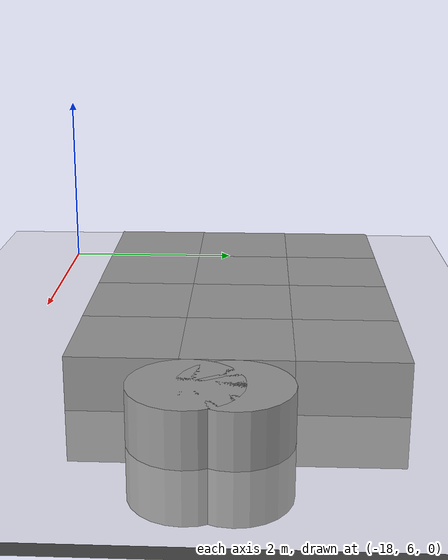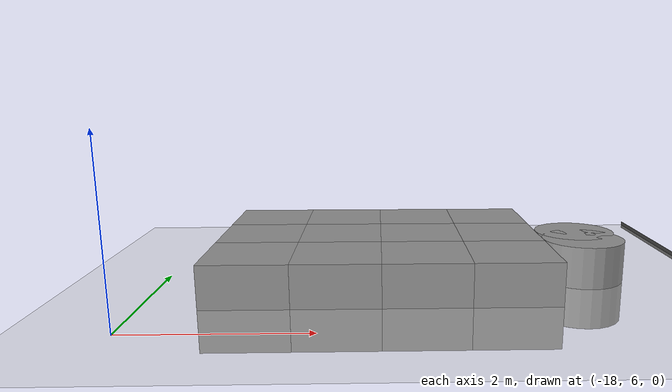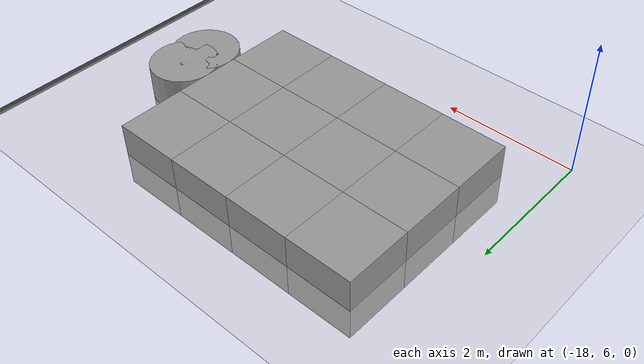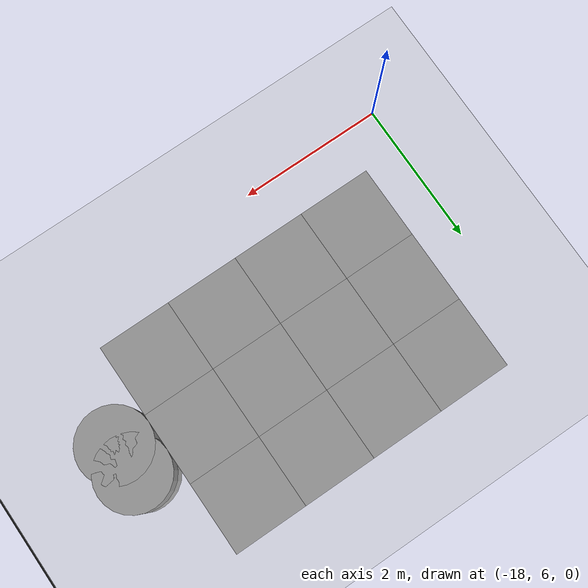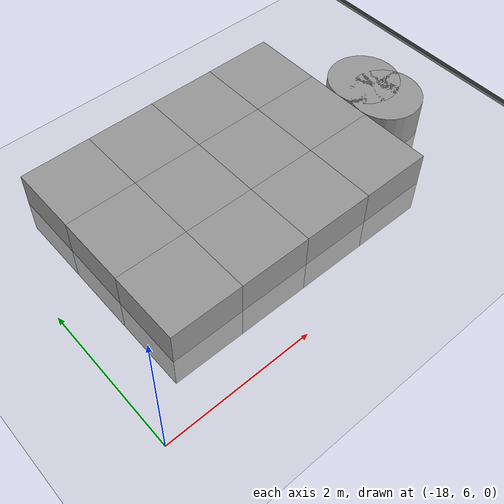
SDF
<sdf version="1.6">
 <world name="default">
  <model name="ground_plane">
   <static>1</static>
   <link name="link">
    <collision name="collision">
     <geometry><plane><normal>0 0 1</normal><size>100 100</size></plane></geometry>
     <surface><friction><ode><mu>100</mu><mu2>50</mu2></ode></friction></surface>
    </collision>
    <visual name="visual">
     <cast_shadows>0</cast_shadows>
     <geometry><plane><normal>0 0 1</normal><size>100 100</size></plane></geometry>
     <material>
      <script><uri>file://media/materials/scripts/gazebo.material</uri><name>Gazebo/Grey</name></script>
     </material>
    </visual>
   </link>
  </model>
  <model name="asphalt_plane">
   <static>1</static>
   <link name="link">
    <collision name="collision"><geometry><box><size>20 20 0.1</size></box></geometry></collision>
    <visual name="visual">
     <cast_shadows>0</cast_shadows>
     <geometry><box><size>20 20 0.1</size></box></geometry>
     <material>
      <script>
       <uri>model://asphalt_plane/materials/scripts</uri>
       <uri>model://asphalt_plane/materials/textures</uri>
       <name>vrc/asphalt</name>
      </script>
     </material>
    </visual>
   </link>
   <pose>-0.132526 12.4193 0 0 -0 0</pose>
  </model>
  <model name="car_2">
   <link name="link_0">
    <pose>-0.5 -0.883748 0 0 -0 0</pose>
    <inertial>
     <mass>1</mass>
     <inertia>
      <ixx>0.166667</ixx>
      <ixy>0</ixy>
      <ixz>0</ixz>
      <iyy>0.166667</iyy>
      <iyz>0</iyz>
      <izz>0.166667</izz>
     </inertia>
    </inertial>
    <visual name="visual">
     <geometry><box><size>1 1 1</size></box></geometry>
     <material>
      <lighting>1</lighting>
      <script><uri>file://media/materials/scripts/gazebo.material</uri><name>Gazebo/Grey</name></script>
      <ambient>0.3 0.3 0.3 1</ambient>
      <diffuse>0.7 0.7 0.7 1</diffuse>
      <specular>0.01 0.01 0.01 1</specular>
      <emissive>0 0 0 1</emissive>
     </material>
    </visual>
    <collision name="collision">
     <geometry><box><size>1 1 1</size></box></geometry>
     <surface>
      <friction>
       <ode><mu>1</mu><mu2>1</mu2><fdir1>0 0 0</fdir1><slip1>0</slip1><slip2>0</slip2></ode>
       <torsional>
        <coefficient>1</coefficient>
        <patch_radius>0</patch_radius>
        <surface_radius>0</surface_radius>
        <use_patch_radius>1</use_patch_radius>
        <ode><slip>0</slip></ode>
       </torsional>
      </friction>
      <bounce><restitution_coefficient>0</restitution_coefficient><threshold>1e+06</threshold></bounce>
      <contact>
       <collide_without_contact>0</collide_without_contact>
       <collide_without_contact_bitmask>1</collide_without_contact_bitmask>
       <collide_bitmask>1</collide_bitmask>
       <ode>
        <soft_cfm>0</soft_cfm>
        <soft_erp>0.2</soft_erp>
        <kp>1e+13</kp>
        <kd>1</kd>
        <max_vel>0.01</max_vel>
        <min_depth>0</min_depth>
       </ode>
       <bullet>
        <split_impulse>1</split_impulse>
        <split_impulse_penetration_threshold>-0.01</split_impulse_penetration_threshold>
        <soft_cfm>0</soft_cfm>
        <soft_erp>0.2</soft_erp>
        <kp>1e+13</kp>
        <kd>1</kd>
       </bullet>
      </contact>
     </surface>
    </collision>
   </link>
   <link name="link_1">
    <pose>0.5 -0.883748 0 0 -0 0</pose>
    <inertial>
     <mass>1</mass>
     <inertia>
      <ixx>0.166667</ixx>
      <ixy>0</ixy>
      <ixz>0</ixz>
      <iyy>0.166667</iyy>
      <iyz>0</iyz>
      <izz>0.166667</izz>
     </inertia>
    </inertial>
    <visual name="visual">
     <geometry><box><size>1 1 1</size></box></geometry>
     <material>
      <lighting>1</lighting>
      <script><uri>file://media/materials/scripts/gazebo.material</uri><name>Gazebo/Grey</name></script>
      <ambient>0.3 0.3 0.3 1</ambient>
      <diffuse>0.7 0.7 0.7 1</diffuse>
      <specular>0.01 0.01 0.01 1</specular>
      <emissive>0 0 0 1</emissive>
     </material>
    </visual>
    <collision name="collision">
     <geometry><box><size>1 1 1</size></box></geometry>
     <surface>
      <friction>
       <ode><mu>1</mu><mu2>1</mu2><fdir1>0 0 0</fdir1><slip1>0</slip1><slip2>0</slip2></ode>
       <torsional>
        <coefficient>1</coefficient>
        <patch_radius>0</patch_radius>
        <surface_radius>0</surface_radius>
        <use_patch_radius>1</use_patch_radius>
        <ode><slip>0</slip></ode>
       </torsional>
      </friction>
      <bounce><restitution_coefficient>0</restitution_coefficient><threshold>1e+06</threshold></bounce>
      <contact>
       <collide_without_contact>0</collide_without_contact>
       <collide_without_contact_bitmask>1</collide_without_contact_bitmask>
       <collide_bitmask>1</collide_bitmask>
       <ode>
        <soft_cfm>0</soft_cfm>
        <soft_erp>0.2</soft_erp>
        <kp>1e+13</kp>
        <kd>1</kd>
        <max_vel>0.01</max_vel>
        <min_depth>0</min_depth>
       </ode>
       <bullet>
        <split_impulse>1</split_impulse>
        <split_impulse_penetration_threshold>-0.01</split_impulse_penetration_threshold>
        <soft_cfm>0</soft_cfm>
        <soft_erp>0.2</soft_erp>
        <kp>1e+13</kp>
        <kd>1</kd>
       </bullet>
      </contact>
     </surface>
    </collision>
   </link>
   <link name="link_12">
    <pose>-1.5 0.11625 0 0 -0 0</pose>
    <inertial>
     <mass>1</mass>
     <inertia>
      <ixx>0.166667</ixx>
      <ixy>0</ixy>
      <ixz>0</ixz>
      <iyy>0.166667</iyy>
      <iyz>0</iyz>
      <izz>0.166667</izz>
     </inertia>
    </inertial>
    <visual name="visual">
     <geometry><box><size>1 1 1</size></box></geometry>
     <material>
      <lighting>1</lighting>
      <script><uri>file://media/materials/scripts/gazebo.material</uri><name>Gazebo/Grey</name></script>
      <ambient>0.3 0.3 0.3 1</ambient>
      <diffuse>0.7 0.7 0.7 1</diffuse>
      <specular>0.01 0.01 0.01 1</specular>
      <emissive>0 0 0 1</emissive>
     </material>
    </visual>
    <collision name="collision">
     <geometry><box><size>1 1 1</size></box></geometry>
     <surface>
      <friction>
       <ode><mu>1</mu><mu2>1</mu2><fdir1>0 0 0</fdir1><slip1>0</slip1><slip2>0</slip2></ode>
       <torsional>
        <coefficient>1</coefficient>
        <patch_radius>0</patch_radius>
        <surface_radius>0</surface_radius>
        <use_patch_radius>1</use_patch_radius>
        <ode><slip>0</slip></ode>
       </torsional>
      </friction>
      <bounce><restitution_coefficient>0</restitution_coefficient><threshold>1e+06</threshold></bounce>
      <contact>
       <collide_without_contact>0</collide_without_contact>
       <collide_without_contact_bitmask>1</collide_without_contact_bitmask>
       <collide_bitmask>1</collide_bitmask>
       <ode>
        <soft_cfm>0</soft_cfm>
        <soft_erp>0.2</soft_erp>
        <kp>1e+13</kp>
        <kd>1</kd>
        <max_vel>0.01</max_vel>
        <min_depth>0</min_depth>
       </ode>
       <bullet>
        <split_impulse>1</split_impulse>
        <split_impulse_penetration_threshold>-0.01</split_impulse_penetration_threshold>
        <soft_cfm>0</soft_cfm>
        <soft_erp>0.2</soft_erp>
        <kp>1e+13</kp>
        <kd>1</kd>
       </bullet>
      </contact>
     </surface>
    </collision>
   </link>
   <link name="link_13">
    <pose>1.5 1.11625 0 0 -0 0</pose>
    <inertial>
     <mass>1</mass>
     <inertia>
      <ixx>0.166667</ixx>
      <ixy>0</ixy>
      <ixz>0</ixz>
      <iyy>0.166667</iyy>
      <iyz>0</iyz>
      <izz>0.166667</izz>
     </inertia>
    </inertial>
    <visual name="visual">
     <geometry><box><size>1 1 1</size></box></geometry>
     <material>
      <lighting>1</lighting>
      <script><uri>file://media/materials/scripts/gazebo.material</uri><name>Gazebo/Grey</name></script>
      <ambient>0.3 0.3 0.3 1</ambient>
      <diffuse>0.7 0.7 0.7 1</diffuse>
      <specular>0.01 0.01 0.01 1</specular>
      <emissive>0 0 0 1</emissive>
     </material>
    </visual>
    <collision name="collision">
     <geometry><box><size>1 1 1</size></box></geometry>
     <surface>
      <friction>
       <ode><mu>1</mu><mu2>1</mu2><fdir1>0 0 0</fdir1><slip1>0</slip1><slip2>0</slip2></ode>
       <torsional>
        <coefficient>1</coefficient>
        <patch_radius>0</patch_radius>
        <surface_radius>0</surface_radius>
        <use_patch_radius>1</use_patch_radius>
        <ode><slip>0</slip></ode>
       </torsional>
      </friction>
      <bounce><restitution_coefficient>0</restitution_coefficient><threshold>1e+06</threshold></bounce>
      <contact>
       <collide_without_contact>0</collide_without_contact>
       <collide_without_contact_bitmask>1</collide_without_contact_bitmask>
       <collide_bitmask>1</collide_bitmask>
       <ode>
        <soft_cfm>0</soft_cfm>
        <soft_erp>0.2</soft_erp>
        <kp>1e+13</kp>
        <kd>1</kd>
        <max_vel>0.01</max_vel>
        <min_depth>0</min_depth>
       </ode>
       <bullet>
        <split_impulse>1</split_impulse>
        <split_impulse_penetration_threshold>-0.01</split_impulse_penetration_threshold>
        <soft_cfm>0</soft_cfm>
        <soft_erp>0.2</soft_erp>
        <kp>1e+13</kp>
        <kd>1</kd>
       </bullet>
      </contact>
     </surface>
    </collision>
   </link>
   <link name="link_14">
    <pose>0.5 1.11625 0 0 -0 0</pose>
    <inertial>
     <mass>1</mass>
     <inertia>
      <ixx>0.166667</ixx>
      <ixy>0</ixy>
      <ixz>0</ixz>
      <iyy>0.166667</iyy>
      <iyz>0</iyz>
      <izz>0.166667</izz>
     </inertia>
    </inertial>
    <visual name="visual">
     <geometry><box><size>1 1 1</size></box></geometry>
     <material>
      <lighting>1</lighting>
      <script><uri>file://media/materials/scripts/gazebo.material</uri><name>Gazebo/Grey</name></script>
      <ambient>0.3 0.3 0.3 1</ambient>
      <diffuse>0.7 0.7 0.7 1</diffuse>
      <specular>0.01 0.01 0.01 1</specular>
      <emissive>0 0 0 1</emissive>
     </material>
    </visual>
    <collision name="collision">
     <geometry><box><size>1 1 1</size></box></geometry>
     <surface>
      <friction>
       <ode><mu>1</mu><mu2>1</mu2><fdir1>0 0 0</fdir1><slip1>0</slip1><slip2>0</slip2></ode>
       <torsional>
        <coefficient>1</coefficient>
        <patch_radius>0</patch_radius>
        <surface_radius>0</surface_radius>
        <use_patch_radius>1</use_patch_radius>
        <ode><slip>0</slip></ode>
       </torsional>
      </friction>
      <bounce><restitution_coefficient>0</restitution_coefficient><threshold>1e+06</threshold></bounce>
      <contact>
       <collide_without_contact>0</collide_without_contact>
       <collide_without_contact_bitmask>1</collide_without_contact_bitmask>
       <collide_bitmask>1</collide_bitmask>
       <ode>
        <soft_cfm>0</soft_cfm>
        <soft_erp>0.2</soft_erp>
        <kp>1e+13</kp>
        <kd>1</kd>
        <max_vel>0.01</max_vel>
        <min_depth>0</min_depth>
       </ode>
       <bullet>
        <split_impulse>1</split_impulse>
        <split_impulse_penetration_threshold>-0.01</split_impulse_penetration_threshold>
        <soft_cfm>0</soft_cfm>
        <soft_erp>0.2</soft_erp>
        <kp>1e+13</kp>
        <kd>1</kd>
       </bullet>
      </contact>
     </surface>
    </collision>
   </link>
   <link name="link_15">
    <pose>-0.5 1.11625 0 0 -0 0</pose>
    <inertial>
     <mass>1</mass>
     <inertia>
      <ixx>0.166667</ixx>
      <ixy>0</ixy>
      <ixz>0</ixz>
      <iyy>0.166667</iyy>
      <iyz>0</iyz>
      <izz>0.166667</izz>
     </inertia>
    </inertial>
    <visual name="visual">
     <geometry><box><size>1 1 1</size></box></geometry>
     <material>
      <lighting>1</lighting>
      <script><uri>file://media/materials/scripts/gazebo.material</uri><name>Gazebo/Grey</name></script>
      <ambient>0.3 0.3 0.3 1</ambient>
      <diffuse>0.7 0.7 0.7 1</diffuse>
      <specular>0.01 0.01 0.01 1</specular>
      <emissive>0 0 0 1</emissive>
     </material>
    </visual>
    <collision name="collision">
     <geometry><box><size>1 1 1</size></box></geometry>
     <surface>
      <friction>
       <ode><mu>1</mu><mu2>1</mu2><fdir1>0 0 0</fdir1><slip1>0</slip1><slip2>0</slip2></ode>
       <torsional>
        <coefficient>1</coefficient>
        <patch_radius>0</patch_radius>
        <surface_radius>0</surface_radius>
        <use_patch_radius>1</use_patch_radius>
        <ode><slip>0</slip></ode>
       </torsional>
      </friction>
      <bounce><restitution_coefficient>0</restitution_coefficient><threshold>1e+06</threshold></bounce>
      <contact>
       <collide_without_contact>0</collide_without_contact>
       <collide_without_contact_bitmask>1</collide_without_contact_bitmask>
       <collide_bitmask>1</collide_bitmask>
       <ode>
        <soft_cfm>0</soft_cfm>
        <soft_erp>0.2</soft_erp>
        <kp>1e+13</kp>
        <kd>1</kd>
        <max_vel>0.01</max_vel>
        <min_depth>0</min_depth>
       </ode>
       <bullet>
        <split_impulse>1</split_impulse>
        <split_impulse_penetration_threshold>-0.01</split_impulse_penetration_threshold>
        <soft_cfm>0</soft_cfm>
        <soft_erp>0.2</soft_erp>
        <kp>1e+13</kp>
        <kd>1</kd>
       </bullet>
      </contact>
     </surface>
    </collision>
   </link>
   <link name="link_16">
    <pose>-1.5 1.11625 0 0 -0 0</pose>
    <inertial>
     <mass>1</mass>
     <inertia>
      <ixx>0.166667</ixx>
      <ixy>0</ixy>
      <ixz>0</ixz>
      <iyy>0.166667</iyy>
      <iyz>0</iyz>
      <izz>0.166667</izz>
     </inertia>
    </inertial>
    <visual name="visual">
     <geometry><box><size>1 1 1</size></box></geometry>
     <material>
      <lighting>1</lighting>
      <script><uri>file://media/materials/scripts/gazebo.material</uri><name>Gazebo/Grey</name></script>
      <ambient>0.3 0.3 0.3 1</ambient>
      <diffuse>0.7 0.7 0.7 1</diffuse>
      <specular>0.01 0.01 0.01 1</specular>
      <emissive>0 0 0 1</emissive>
     </material>
    </visual>
    <collision name="collision">
     <geometry><box><size>1 1 1</size></box></geometry>
     <surface>
      <friction>
       <ode><mu>1</mu><mu2>1</mu2><fdir1>0 0 0</fdir1><slip1>0</slip1><slip2>0</slip2></ode>
       <torsional>
        <coefficient>1</coefficient>
        <patch_radius>0</patch_radius>
        <surface_radius>0</surface_radius>
        <use_patch_radius>1</use_patch_radius>
        <ode><slip>0</slip></ode>
       </torsional>
      </friction>
      <bounce><restitution_coefficient>0</restitution_coefficient><threshold>1e+06</threshold></bounce>
      <contact>
       <collide_without_contact>0</collide_without_contact>
       <collide_without_contact_bitmask>1</collide_without_contact_bitmask>
       <collide_bitmask>1</collide_bitmask>
       <ode>
        <soft_cfm>0</soft_cfm>
        <soft_erp>0.2</soft_erp>
        <kp>1e+13</kp>
        <kd>1</kd>
        <max_vel>0.01</max_vel>
        <min_depth>0</min_depth>
       </ode>
       <bullet>
        <split_impulse>1</split_impulse>
        <split_impulse_penetration_threshold>-0.01</split_impulse_penetration_threshold>
        <soft_cfm>0</soft_cfm>
        <soft_erp>0.2</soft_erp>
        <kp>1e+13</kp>
        <kd>1</kd>
       </bullet>
      </contact>
     </surface>
    </collision>
   </link>
   <link name="link_19">
    <pose>2.5 -0.287812 0 0 -0 0</pose>
    <inertial>
     <mass>1</mass>
     <inertia><ixx>0.145833</ixx><ixy>0</ixy><ixz>0</ixz><iyy>0.145833</iyy><iyz>0</iyz><izz>0.125</izz></inertia>
    </inertial>
    <visual name="visual">
     <geometry><cylinder><radius>0.5</radius><length>1</length></cylinder></geometry>
     <material>
      <lighting>1</lighting>
      <script><uri>file://media/materials/scripts/gazebo.material</uri><name>Gazebo/Grey</name></script>
      <ambient>0.3 0.3 0.3 1</ambient>
      <diffuse>0.7 0.7 0.7 1</diffuse>
      <specular>0.01 0.01 0.01 1</specular>
      <emissive>0 0 0 1</emissive>
     </material>
    </visual>
    <collision name="collision">
     <geometry><cylinder><radius>0.5</radius><length>1</length></cylinder></geometry>
     <surface>
      <friction>
       <ode><mu>1</mu><mu2>1</mu2><fdir1>0 0 0</fdir1><slip1>0</slip1><slip2>0</slip2></ode>
       <torsional>
        <coefficient>1</coefficient>
        <patch_radius>0</patch_radius>
        <surface_radius>0</surface_radius>
        <use_patch_radius>1</use_patch_radius>
        <ode><slip>0</slip></ode>
       </torsional>
      </friction>
      <bounce><restitution_coefficient>0</restitution_coefficient><threshold>1e+06</threshold></bounce>
      <contact>
       <collide_without_contact>0</collide_without_contact>
       <collide_without_contact_bitmask>1</collide_without_contact_bitmask>
       <collide_bitmask>1</collide_bitmask>
       <ode>
        <soft_cfm>0</soft_cfm>
        <soft_erp>0.2</soft_erp>
        <kp>1e+13</kp>
        <kd>1</kd>
        <max_vel>0.01</max_vel>
        <min_depth>0</min_depth>
       </ode>
       <bullet>
        <split_impulse>1</split_impulse>
        <split_impulse_penetration_threshold>-0.01</split_impulse_penetration_threshold>
        <soft_cfm>0</soft_cfm>
        <soft_erp>0.2</soft_erp>
        <kp>1e+13</kp>
        <kd>1</kd>
       </bullet>
      </contact>
     </surface>
    </collision>
   </link>
   <link name="link_2">
    <pose>1.5 -0.883748 0 0 -0 0</pose>
    <inertial>
     <mass>1</mass>
     <inertia>
      <ixx>0.166667</ixx>
      <ixy>0</ixy>
      <ixz>0</ixz>
      <iyy>0.166667</iyy>
      <iyz>0</iyz>
      <izz>0.166667</izz>
     </inertia>
    </inertial>
    <visual name="visual">
     <geometry><box><size>1 1 1</size></box></geometry>
     <material>
      <lighting>1</lighting>
      <script><uri>file://media/materials/scripts/gazebo.material</uri><name>Gazebo/Grey</name></script>
      <ambient>0.3 0.3 0.3 1</ambient>
      <diffuse>0.7 0.7 0.7 1</diffuse>
      <specular>0.01 0.01 0.01 1</specular>
      <emissive>0 0 0 1</emissive>
     </material>
    </visual>
    <collision name="collision">
     <geometry><box><size>1 1 1</size></box></geometry>
     <surface>
      <friction>
       <ode><mu>1</mu><mu2>1</mu2><fdir1>0 0 0</fdir1><slip1>0</slip1><slip2>0</slip2></ode>
       <torsional>
        <coefficient>1</coefficient>
        <patch_radius>0</patch_radius>
        <surface_radius>0</surface_radius>
        <use_patch_radius>1</use_patch_radius>
        <ode><slip>0</slip></ode>
       </torsional>
      </friction>
      <bounce><restitution_coefficient>0</restitution_coefficient><threshold>1e+06</threshold></bounce>
      <contact>
       <collide_without_contact>0</collide_without_contact>
       <collide_without_contact_bitmask>1</collide_without_contact_bitmask>
       <collide_bitmask>1</collide_bitmask>
       <ode>
        <soft_cfm>0</soft_cfm>
        <soft_erp>0.2</soft_erp>
        <kp>1e+13</kp>
        <kd>1</kd>
        <max_vel>0.01</max_vel>
        <min_depth>0</min_depth>
       </ode>
       <bullet>
        <split_impulse>1</split_impulse>
        <split_impulse_penetration_threshold>-0.01</split_impulse_penetration_threshold>
        <soft_cfm>0</soft_cfm>
        <soft_erp>0.2</soft_erp>
        <kp>1e+13</kp>
        <kd>1</kd>
       </bullet>
      </contact>
     </surface>
    </collision>
   </link>
   <link name="link_20">
    <pose>2.5 0.11625 0 0 -0 0</pose>
    <inertial>
     <mass>1</mass>
     <inertia><ixx>0.145833</ixx><ixy>0</ixy><ixz>0</ixz><iyy>0.145833</iyy><iyz>0</iyz><izz>0.125</izz></inertia>
    </inertial>
    <visual name="visual">
     <geometry><cylinder><radius>0.5</radius><length>1</length></cylinder></geometry>
     <material>
      <lighting>1</lighting>
      <script><uri>file://media/materials/scripts/gazebo.material</uri><name>Gazebo/Grey</name></script>
      <ambient>0.3 0.3 0.3 1</ambient>
      <diffuse>0.7 0.7 0.7 1</diffuse>
      <specular>0.01 0.01 0.01 1</specular>
      <emissive>0 0 0 1</emissive>
     </material>
    </visual>
    <collision name="collision">
     <geometry><cylinder><radius>0.5</radius><length>1</length></cylinder></geometry>
     <surface>
      <friction>
       <ode><mu>1</mu><mu2>1</mu2><fdir1>0 0 0</fdir1><slip1>0</slip1><slip2>0</slip2></ode>
       <torsional>
        <coefficient>1</coefficient>
        <patch_radius>0</patch_radius>
        <surface_radius>0</surface_radius>
        <use_patch_radius>1</use_patch_radius>
        <ode><slip>0</slip></ode>
       </torsional>
      </friction>
      <bounce><restitution_coefficient>0</restitution_coefficient><threshold>1e+06</threshold></bounce>
      <contact>
       <collide_without_contact>0</collide_without_contact>
       <collide_without_contact_bitmask>1</collide_without_contact_bitmask>
       <collide_bitmask>1</collide_bitmask>
       <ode>
        <soft_cfm>0</soft_cfm>
        <soft_erp>0.2</soft_erp>
        <kp>1e+13</kp>
        <kd>1</kd>
        <max_vel>0.01</max_vel>
        <min_depth>0</min_depth>
       </ode>
       <bullet>
        <split_impulse>1</split_impulse>
        <split_impulse_penetration_threshold>-0.01</split_impulse_penetration_threshold>
        <soft_cfm>0</soft_cfm>
        <soft_erp>0.2</soft_erp>
        <kp>1e+13</kp>
        <kd>1</kd>
       </bullet>
      </contact>
     </surface>
    </collision>
   </link>
   <link name="link_3">
    <pose>1.5 0.116252 0 0 -0 0</pose>
    <inertial>
     <mass>1</mass>
     <inertia>
      <ixx>0.166667</ixx>
      <ixy>0</ixy>
      <ixz>0</ixz>
      <iyy>0.166667</iyy>
      <iyz>0</iyz>
      <izz>0.166667</izz>
     </inertia>
    </inertial>
    <visual name="visual">
     <geometry><box><size>1 1 1</size></box></geometry>
     <material>
      <lighting>1</lighting>
      <script><uri>file://media/materials/scripts/gazebo.material</uri><name>Gazebo/Grey</name></script>
      <ambient>0.3 0.3 0.3 1</ambient>
      <diffuse>0.7 0.7 0.7 1</diffuse>
      <specular>0.01 0.01 0.01 1</specular>
      <emissive>0 0 0 1</emissive>
     </material>
    </visual>
    <collision name="collision">
     <geometry><box><size>1 1 1</size></box></geometry>
     <surface>
      <friction>
       <ode><mu>1</mu><mu2>1</mu2><fdir1>0 0 0</fdir1><slip1>0</slip1><slip2>0</slip2></ode>
       <torsional>
        <coefficient>1</coefficient>
        <patch_radius>0</patch_radius>
        <surface_radius>0</surface_radius>
        <use_patch_radius>1</use_patch_radius>
        <ode><slip>0</slip></ode>
       </torsional>
      </friction>
      <bounce><restitution_coefficient>0</restitution_coefficient><threshold>1e+06</threshold></bounce>
      <contact>
       <collide_without_contact>0</collide_without_contact>
       <collide_without_contact_bitmask>1</collide_without_contact_bitmask>
       <collide_bitmask>1</collide_bitmask>
       <ode>
        <soft_cfm>0</soft_cfm>
        <soft_erp>0.2</soft_erp>
        <kp>1e+13</kp>
        <kd>1</kd>
        <max_vel>0.01</max_vel>
        <min_depth>0</min_depth>
       </ode>
       <bullet>
        <split_impulse>1</split_impulse>
        <split_impulse_penetration_threshold>-0.01</split_impulse_penetration_threshold>
        <soft_cfm>0</soft_cfm>
        <soft_erp>0.2</soft_erp>
        <kp>1e+13</kp>
        <kd>1</kd>
       </bullet>
      </contact>
     </surface>
    </collision>
   </link>
   <link name="link_4">
    <pose>0.5 0.116252 0 0 -0 0</pose>
    <inertial>
     <mass>1</mass>
     <inertia>
      <ixx>0.166667</ixx>
      <ixy>0</ixy>
      <ixz>0</ixz>
      <iyy>0.166667</iyy>
      <iyz>0</iyz>
      <izz>0.166667</izz>
     </inertia>
    </inertial>
    <visual name="visual">
     <geometry><box><size>1 1 1</size></box></geometry>
     <material>
      <lighting>1</lighting>
      <script><uri>file://media/materials/scripts/gazebo.material</uri><name>Gazebo/Grey</name></script>
      <ambient>0.3 0.3 0.3 1</ambient>
      <diffuse>0.7 0.7 0.7 1</diffuse>
      <specular>0.01 0.01 0.01 1</specular>
      <emissive>0 0 0 1</emissive>
     </material>
    </visual>
    <collision name="collision">
     <geometry><box><size>1 1 1</size></box></geometry>
     <surface>
      <friction>
       <ode><mu>1</mu><mu2>1</mu2><fdir1>0 0 0</fdir1><slip1>0</slip1><slip2>0</slip2></ode>
       <torsional>
        <coefficient>1</coefficient>
        <patch_radius>0</patch_radius>
        <surface_radius>0</surface_radius>
        <use_patch_radius>1</use_patch_radius>
        <ode><slip>0</slip></ode>
       </torsional>
      </friction>
      <bounce><restitution_coefficient>0</restitution_coefficient><threshold>1e+06</threshold></bounce>
      <contact>
       <collide_without_contact>0</collide_without_contact>
       <collide_without_contact_bitmask>1</collide_without_contact_bitmask>
       <collide_bitmask>1</collide_bitmask>
       <ode>
        <soft_cfm>0</soft_cfm>
        <soft_erp>0.2</soft_erp>
        <kp>1e+13</kp>
        <kd>1</kd>
        <max_vel>0.01</max_vel>
        <min_depth>0</min_depth>
       </ode>
       <bullet>
        <split_impulse>1</split_impulse>
        <split_impulse_penetration_threshold>-0.01</split_impulse_penetration_threshold>
        <soft_cfm>0</soft_cfm>
        <soft_erp>0.2</soft_erp>
        <kp>1e+13</kp>
        <kd>1</kd>
       </bullet>
      </contact>
     </surface>
    </collision>
   </link>
   <link name="link_5">
    <pose>-0.5 0.116252 0 0 -0 0</pose>
    <inertial>
     <mass>1</mass>
     <inertia>
      <ixx>0.166667</ixx>
      <ixy>0</ixy>
      <ixz>0</ixz>
      <iyy>0.166667</iyy>
      <iyz>0</iyz>
      <izz>0.166667</izz>
     </inertia>
    </inertial>
    <visual name="visual">
     <geometry><box><size>1 1 1</size></box></geometry>
     <material>
      <lighting>1</lighting>
      <script><uri>file://media/materials/scripts/gazebo.material</uri><name>Gazebo/Grey</name></script>
      <ambient>0.3 0.3 0.3 1</ambient>
      <diffuse>0.7 0.7 0.7 1</diffuse>
      <specular>0.01 0.01 0.01 1</specular>
      <emissive>0 0 0 1</emissive>
     </material>
    </visual>
    <collision name="collision">
     <geometry><box><size>1 1 1</size></box></geometry>
     <surface>
      <friction>
       <ode><mu>1</mu><mu2>1</mu2><fdir1>0 0 0</fdir1><slip1>0</slip1><slip2>0</slip2></ode>
       <torsional>
        <coefficient>1</coefficient>
        <patch_radius>0</patch_radius>
        <surface_radius>0</surface_radius>
        <use_patch_radius>1</use_patch_radius>
        <ode><slip>0</slip></ode>
       </torsional>
      </friction>
      <bounce><restitution_coefficient>0</restitution_coefficient><threshold>1e+06</threshold></bounce>
      <contact>
       <collide_without_contact>0</collide_without_contact>
       <collide_without_contact_bitmask>1</collide_without_contact_bitmask>
       <collide_bitmask>1</collide_bitmask>
       <ode>
        <soft_cfm>0</soft_cfm>
        <soft_erp>0.2</soft_erp>
        <kp>1e+13</kp>
        <kd>1</kd>
        <max_vel>0.01</max_vel>
        <min_depth>0</min_depth>
       </ode>
       <bullet>
        <split_impulse>1</split_impulse>
        <split_impulse_penetration_threshold>-0.01</split_impulse_penetration_threshold>
        <soft_cfm>0</soft_cfm>
        <soft_erp>0.2</soft_erp>
        <kp>1e+13</kp>
        <kd>1</kd>
       </bullet>
      </contact>
     </surface>
    </collision>
   </link>
   <link name="link_9">
    <pose>-1.5 -0.883748 0 0 -0 0</pose>
    <inertial>
     <mass>1</mass>
     <inertia>
      <ixx>0.166667</ixx>
      <ixy>0</ixy>
      <ixz>0</ixz>
      <iyy>0.166667</iyy>
      <iyz>0</iyz>
      <izz>0.166667</izz>
     </inertia>
    </inertial>
    <visual name="visual">
     <geometry><box><size>1 1 1</size></box></geometry>
     <material>
      <lighting>1</lighting>
      <script><uri>file://media/materials/scripts/gazebo.material</uri><name>Gazebo/Grey</name></script>
      <ambient>0.3 0.3 0.3 1</ambient>
      <diffuse>0.7 0.7 0.7 1</diffuse>
      <specular>0.01 0.01 0.01 1</specular>
      <emissive>0 0 0 1</emissive>
     </material>
    </visual>
    <collision name="collision">
     <geometry><box><size>1 1 1</size></box></geometry>
     <surface>
      <friction>
       <ode><mu>1</mu><mu2>1</mu2><fdir1>0 0 0</fdir1><slip1>0</slip1><slip2>0</slip2></ode>
       <torsional>
        <coefficient>1</coefficient>
        <patch_radius>0</patch_radius>
        <surface_radius>0</surface_radius>
        <use_patch_radius>1</use_patch_radius>
        <ode><slip>0</slip></ode>
       </torsional>
      </friction>
      <bounce><restitution_coefficient>0</restitution_coefficient><threshold>1e+06</threshold></bounce>
      <contact>
       <collide_without_contact>0</collide_without_contact>
       <collide_without_contact_bitmask>1</collide_without_contact_bitmask>
       <collide_bitmask>1</collide_bitmask>
       <ode>
        <soft_cfm>0</soft_cfm>
        <soft_erp>0.2</soft_erp>
        <kp>1e+13</kp>
        <kd>1</kd>
        <max_vel>0.01</max_vel>
        <min_depth>0</min_depth>
       </ode>
       <bullet>
        <split_impulse>1</split_impulse>
        <split_impulse_penetration_threshold>-0.01</split_impulse_penetration_threshold>
        <soft_cfm>0</soft_cfm>
        <soft_erp>0.2</soft_erp>
        <kp>1e+13</kp>
        <kd>1</kd>
       </bullet>
      </contact>
     </surface>
    </collision>
   </link>
   <static>1</static>
   <pose>-15.3529 8.08691 0 0 -0 0</pose>
  </model>
 </world>
</sdf>
